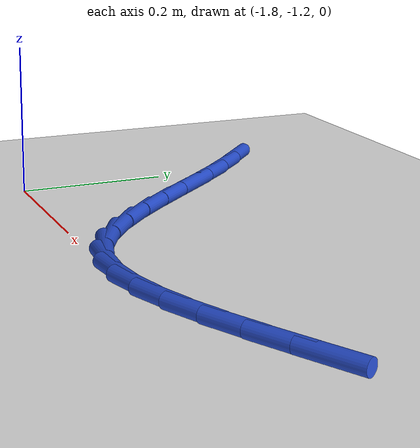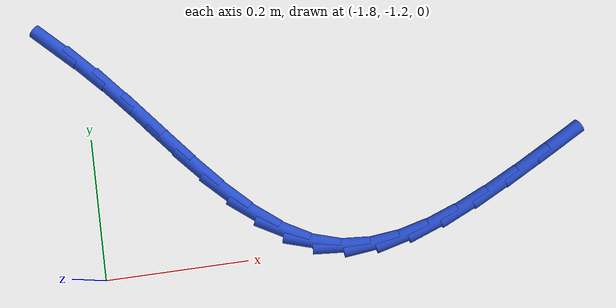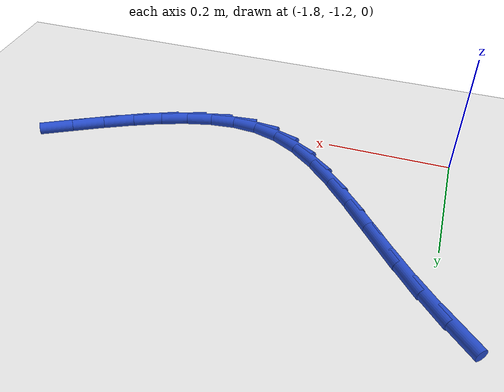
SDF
<sdf version="1.6">
 <world name="default">
  <model name="ground_plane">
   <static>1</static>
   <link name="link">
    <collision name="collision">
     <geometry><plane><normal>0 0 1</normal><size>100 100</size></plane></geometry>
     <surface><friction><ode><mu>100</mu><mu2>50</mu2></ode></friction></surface>
    </collision>
    <visual name="visual">
     <cast_shadows>0</cast_shadows>
     <geometry><plane><normal>0 0 1</normal><size>100 100</size></plane></geometry>
     <material>
      <script><uri>file://media/materials/scripts/gazebo.material</uri><name>Gazebo/WhiteGlow</name></script>
     </material>
    </visual>
   </link>
  </model>
  <model name="line">
   <link name="link_89">
    <pose>-1.8334652065395773 -0.8605022180969614 0.01 0 1.57 -0.7687484679927314</pose>
    <collision name="collision">
     <geometry><cylinder><radius>0.01</radius><length>0.08</length></cylinder></geometry>
    </collision>
    <visual name="visual">
     <material>
      <script><name>Gazebo/Blue</name><uri>file://media/materials/scripts/gazebo.material</uri></script>
     </material>
     <geometry><cylinder><radius>0.01</radius><length>0.08</length></cylinder></geometry>
    </visual>
   </link>
   <link name="link_90">
    <pose>-1.7956493754047227 -0.897079315170634 0.01 0 1.57 -0.8144434853779402</pose>
    <collision name="collision">
     <geometry><cylinder><radius>0.01</radius><length>0.08</length></cylinder></geometry>
    </collision>
    <visual name="visual">
     <material>
      <script><name>Gazebo/Blue</name><uri>file://media/materials/scripts/gazebo.material</uri></script>
     </material>
     <geometry><cylinder><radius>0.01</radius><length>0.08</length></cylinder></geometry>
    </visual>
   </link>
   <link name="link_91">
    <pose>-1.758714735874799 -0.9362243345048359 0.01 0 1.57 -0.8587825673773805</pose>
    <collision name="collision">
     <geometry><cylinder><radius>0.01</radius><length>0.08</length></cylinder></geometry>
    </collision>
    <visual name="visual">
     <material>
      <script><name>Gazebo/Blue</name><uri>file://media/materials/scripts/gazebo.material</uri></script>
     </material>
     <geometry><cylinder><radius>0.01</radius><length>0.08</length></cylinder></geometry>
    </visual>
   </link>
   <link name="link_92">
    <pose>-1.7229298715526011 -0.9776882527717269 0.01 0 1.57 -0.8780272893882584</pose>
    <collision name="collision">
     <geometry><cylinder><radius>0.01</radius><length>0.08</length></cylinder></geometry>
    </collision>
    <visual name="visual">
     <material>
      <script><name>Gazebo/Blue</name><uri>file://media/materials/scripts/gazebo.material</uri></script>
     </material>
     <geometry><cylinder><radius>0.01</radius><length>0.08</length></cylinder></geometry>
    </visual>
   </link>
   <link name="link_93">
    <pose>-1.6878926843155568 -1.019901628121954 0.01 0 1.57 -0.8717399557959953</pose>
    <collision name="collision">
     <geometry><cylinder><radius>0.01</radius><length>0.08</length></cylinder></geometry>
    </collision>
    <visual name="visual">
     <material>
      <script><name>Gazebo/Blue</name><uri>file://media/materials/scripts/gazebo.material</uri></script>
     </material>
     <geometry><cylinder><radius>0.01</radius><length>0.08</length></cylinder></geometry>
    </visual>
   </link>
   <link name="link_94">
    <pose>-1.6531608344070092 -1.061215792156556 0.01 0 1.57 -0.8382777905003479</pose>
    <collision name="collision">
     <geometry><cylinder><radius>0.01</radius><length>0.08</length></cylinder></geometry>
    </collision>
    <visual name="visual">
     <material>
      <script><name>Gazebo/Blue</name><uri>file://media/materials/scripts/gazebo.material</uri></script>
     </material>
     <geometry><cylinder><radius>0.01</radius><length>0.08</length></cylinder></geometry>
    </visual>
   </link>
   <link name="link_95">
    <pose>-1.6182919820702983 -1.0999820764765715 0.01 0 1.57 -0.7728526308676631</pose>
    <collision name="collision">
     <geometry><cylinder><radius>0.01</radius><length>0.08</length></cylinder></geometry>
    </collision>
    <visual name="visual">
     <material>
      <script><name>Gazebo/Blue</name><uri>file://media/materials/scripts/gazebo.material</uri></script>
     </material>
     <geometry><cylinder><radius>0.01</radius><length>0.08</length></cylinder></geometry>
    </visual>
   </link>
   <link name="link_96">
    <pose>-1.5828437875487669 -1.1345518126830385 0.01 0 1.57 -0.6671483996125702</pose>
    <collision name="collision">
     <geometry><cylinder><radius>0.01</radius><length>0.08</length></cylinder></geometry>
    </collision>
    <visual name="visual">
     <material>
      <script><name>Gazebo/Blue</name><uri>file://media/materials/scripts/gazebo.material</uri></script>
     </material>
     <geometry><cylinder><radius>0.01</radius><length>0.08</length></cylinder></geometry>
    </visual>
   </link>
   <link name="link_97">
    <pose>-1.546373911085756 -1.1632763323769948 0.01 0 1.57 -0.5102404810759714</pose>
    <collision name="collision">
     <geometry><cylinder><radius>0.01</radius><length>0.08</length></cylinder></geometry>
    </collision>
    <visual name="visual">
     <material>
      <script><name>Gazebo/Blue</name><uri>file://media/materials/scripts/gazebo.material</uri></script>
     </material>
     <geometry><cylinder><radius>0.01</radius><length>0.08</length></cylinder></geometry>
    </visual>
   </link>
   <link name="link_98">
    <pose>-1.5084400129246067 -1.1845069671594801 0.01 0 1.57 -0.29714682555960537</pose>
    <collision name="collision">
     <geometry><cylinder><radius>0.01</radius><length>0.08</length></cylinder></geometry>
    </collision>
    <visual name="visual">
     <material>
      <script><name>Gazebo/Blue</name><uri>file://media/materials/scripts/gazebo.material</uri></script>
     </material>
     <geometry><cylinder><radius>0.01</radius><length>0.08</length></cylinder></geometry>
    </visual>
   </link>
   <link name="link_99">
    <pose>-1.4686232635130145 -1.1966993657324365 0.01 0 1.57 -0.07510335319451183</pose>
    <collision name="collision">
     <geometry><cylinder><radius>0.01</radius><length>0.08</length></cylinder></geometry>
    </collision>
    <visual name="visual">
     <material>
      <script><name>Gazebo/Blue</name><uri>file://media/materials/scripts/gazebo.material</uri></script>
     </material>
     <geometry><cylinder><radius>0.01</radius><length>0.08</length></cylinder></geometry>
    </visual>
   </link>
   <link name="link_100">
    <pose>-1.4268504153816857 -1.1998425586639336 0.01 0 1.57 0.10867833001294244</pose>
    <collision name="collision">
     <geometry><cylinder><radius>0.01</radius><length>0.08</length></cylinder></geometry>
    </collision>
    <visual name="visual">
     <material>
      <script><name>Gazebo/Blue</name><uri>file://media/materials/scripts/gazebo.material</uri></script>
     </material>
     <geometry><cylinder><radius>0.01</radius><length>0.08</length></cylinder></geometry>
    </visual>
   </link>
   <link name="link_101">
    <pose>-1.3833111149719406 -1.1950920627927821 0.01 0 1.57 0.24877387765910958</pose>
    <collision name="collision">
     <geometry><cylinder><radius>0.01</radius><length>0.08</length></cylinder></geometry>
    </collision>
    <visual name="visual">
     <material>
      <script><name>Gazebo/Blue</name><uri>file://media/materials/scripts/gazebo.material</uri></script>
     </material>
     <geometry><cylinder><radius>0.01</radius><length>0.08</length></cylinder></geometry>
    </visual>
   </link>
   <link name="link_102">
    <pose>-1.3382015925945157 -1.1836326082372637 0.01 0 1.57 0.350301348556016</pose>
    <collision name="collision">
     <geometry><cylinder><radius>0.01</radius><length>0.08</length></cylinder></geometry>
    </collision>
    <visual name="visual">
     <material>
      <script><name>Gazebo/Blue</name><uri>file://media/materials/scripts/gazebo.material</uri></script>
     </material>
     <geometry><cylinder><radius>0.01</radius><length>0.08</length></cylinder></geometry>
    </visual>
   </link>
   <link name="link_103">
    <pose>-1.2917180785601445 -1.1666489251156578 0.01 0 1.57 0.4206813919012032</pose>
    <collision name="collision">
     <geometry><cylinder><radius>0.01</radius><length>0.08</length></cylinder></geometry>
    </collision>
    <visual name="visual">
     <material>
      <script><name>Gazebo/Blue</name><uri>file://media/materials/scripts/gazebo.material</uri></script>
     </material>
     <geometry><cylinder><radius>0.01</radius><length>0.08</length></cylinder></geometry>
    </visual>
   </link>
   <link name="link_104">
    <pose>-1.2440568031795622 -1.1453257435462452 0.01 0 1.57 0.4662189257787922</pose>
    <collision name="collision">
     <geometry><cylinder><radius>0.01</radius><length>0.08</length></cylinder></geometry>
    </collision>
    <visual name="visual">
     <material>
      <script><name>Gazebo/Blue</name><uri>file://media/materials/scripts/gazebo.material</uri></script>
     </material>
     <geometry><cylinder><radius>0.01</radius><length>0.08</length></cylinder></geometry>
    </visual>
   </link>
   <link name="link_105">
    <pose>-1.1954139967635053 -1.120847793647306 0.01 0 1.57 0.49131614707176263</pose>
    <collision name="collision">
     <geometry><cylinder><radius>0.01</radius><length>0.08</length></cylinder></geometry>
    </collision>
    <visual name="visual">
     <material>
      <script><name>Gazebo/Blue</name><uri>file://media/materials/scripts/gazebo.material</uri></script>
     </material>
     <geometry><cylinder><radius>0.01</radius><length>0.08</length></cylinder></geometry>
    </visual>
   </link>
   <link name="link_106">
    <pose>-1.1459858896227086 -1.094399805537121 0.01 0 1.57 0.49859445784792067</pose>
    <collision name="collision">
     <geometry><cylinder><radius>0.01</radius><length>0.08</length></cylinder></geometry>
    </collision>
    <visual name="visual">
     <material>
      <script><name>Gazebo/Blue</name><uri>file://media/materials/scripts/gazebo.material</uri></script>
     </material>
     <geometry><cylinder><radius>0.01</radius><length>0.08</length></cylinder></geometry>
    </visual>
   </link>
  </model>
 </world>
</sdf>
